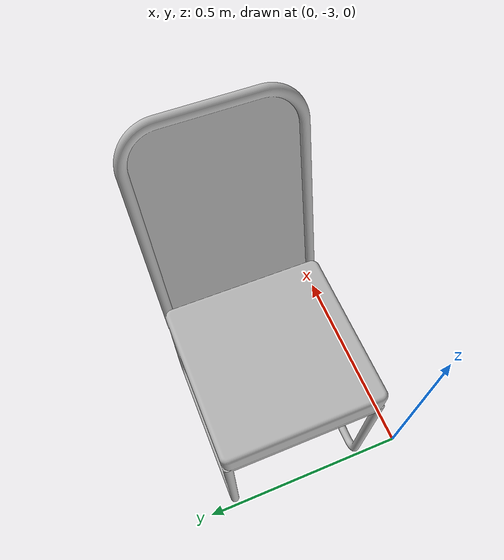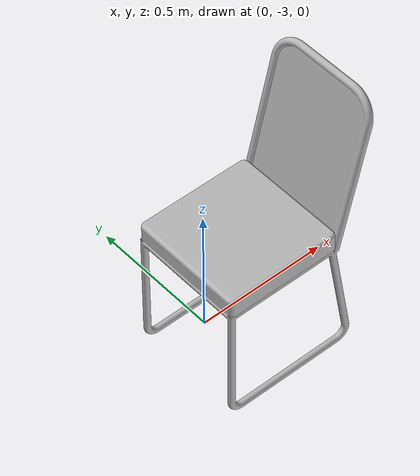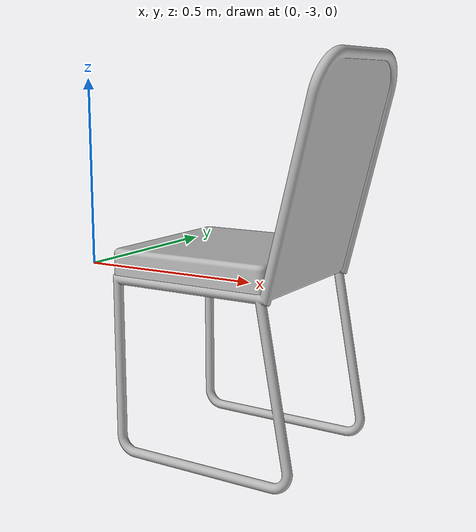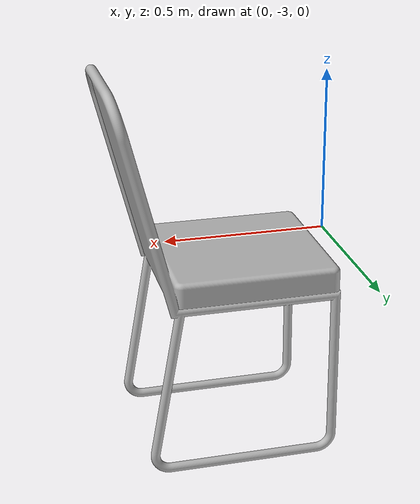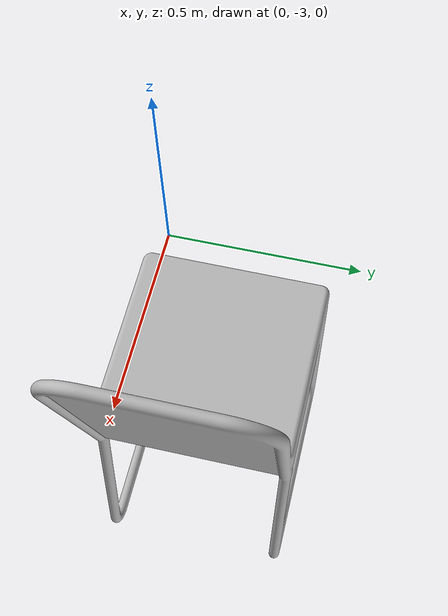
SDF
<?xml version="1.0" ?>
<sdf version="1.6">
  <model name="silla">
    <static>true</static>
    <link name="link">
      <collision name="collision">
        <pose>0 0 0 0 0 -1.57079632679</pose>
        <geometry>
          <mesh>
            <scale>0.0001 0.0001 0.0001</scale>
            <uri>model://silla/meshes/silla25.obj</uri>
          </mesh>
        </geometry>
      </collision>
      <visual name="visual">
        <pose>0 0 0 0 0 -1.57079632679</pose>
        <geometry>
          <mesh>
            <scale>0.0001 0.0001 0.0001</scale>
            <uri>model://silla/meshes/silla25.obj</uri>
          </mesh>
        </geometry>
      </visual>
    </link>
  </model>
</sdf>
